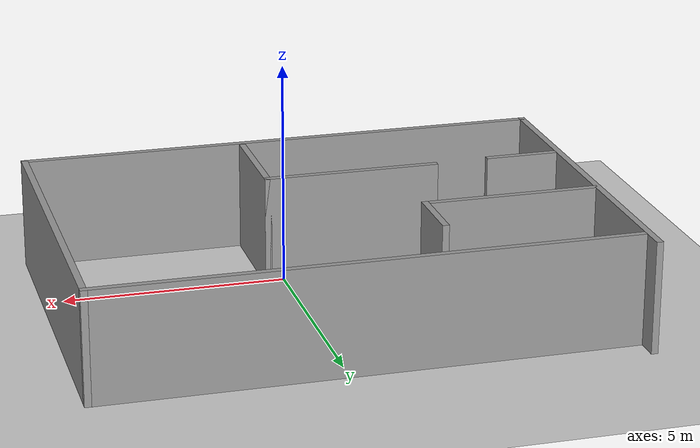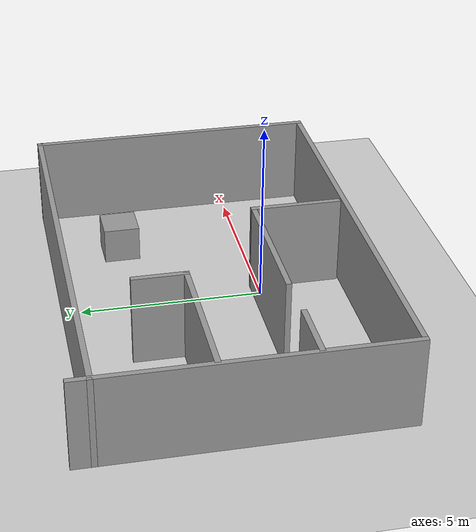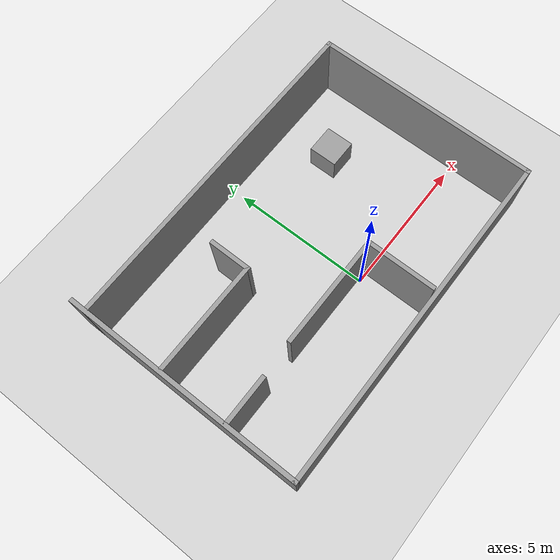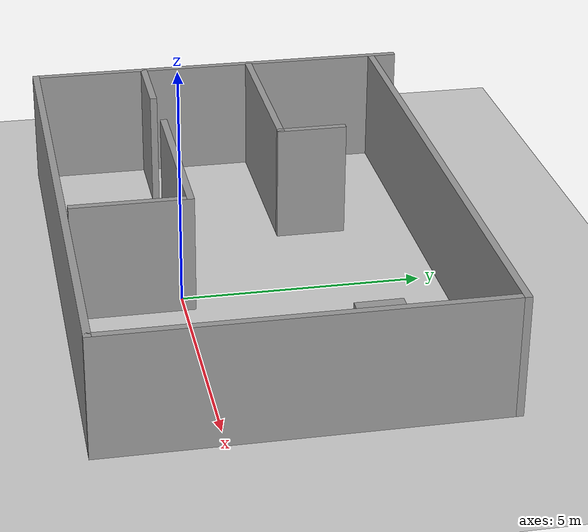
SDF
<sdf version="1.7">
 <world name="default">
  <light name="sun" type="directional">
   <pose>0 0 10 0 -0 0</pose>
   <diffuse>0.8 0.8 0.8 1</diffuse>
   <specular>0.2 0.2 0.2 1</specular>
   <attenuation>
    <range>1000</range>
    <constant>0.9</constant>
    <linear>0.01</linear>
    <quadratic>0.001</quadratic>
   </attenuation>
   <direction>-0.5 0.1 -0.9</direction>
   <spot><inner_angle>0</inner_angle><outer_angle>0</outer_angle><falloff>0</falloff></spot>
  </light>
  <model name="ground_plane">
   <static>1</static>
   <link name="link">
    <collision name="collision">
     <geometry><plane><normal>0 0 1</normal><size>100 100</size></plane></geometry>
     <surface>
      <contact><collide_bitmask>65535</collide_bitmask></contact>
      <friction><ode><mu>100</mu><mu2>50</mu2></ode></friction>
     </surface>
    </collision>
    <visual name="visual">
     <cast_shadows>0</cast_shadows>
     <geometry><plane><normal>0 0 1</normal><size>100 100</size></plane></geometry>
     <material>
      <script><uri>file://media/materials/scripts/gazebo.material</uri><name>Gazebo/Grey</name></script>
     </material>
    </visual>
   </link>
  </model>
  <gravity>0 0 -9.8</gravity>
  <magnetic_field>6e-06 2.3e-05 -4.2e-05</magnetic_field>
  <atmosphere type="adiabatic"/>
  <physics type="ode">
   <max_step_size>0.001</max_step_size>
   <real_time_factor>1</real_time_factor>
   <real_time_update_rate>1000</real_time_update_rate>
  </physics>
  <scene><ambient>0.4 0.4 0.4 1</ambient><background>0.7 0.7 0.7 1</background><shadows>1</shadows></scene>
  <spherical_coordinates>
   <surface_model>EARTH_WGS84</surface_model>
   <latitude_deg>0</latitude_deg>
   <longitude_deg>0</longitude_deg>
   <elevation>0</elevation>
   <heading_deg>0</heading_deg>
  </spherical_coordinates>
  <model name="apartment">
   <pose>-0.523043 1.7879 0 0 -0 0</pose>
   <link name="Wall_10">
    <collision name="Wall_10_Collision">
     <geometry><box><size>1.5 0.15 2.5</size></box></geometry>
     <pose>0 0 1.25 0 -0 0</pose>
    </collision>
    <visual name="Wall_10_Visual">
     <pose>0 0 1.25 0 -0 0</pose>
     <geometry><box><size>1.5 0.15 2.5</size></box></geometry>
     <material>
      <script><uri>file://media/materials/scripts/gazebo.material</uri><name>Gazebo/Grey</name></script>
      <ambient>1 1 1 1</ambient>
     </material>
     <meta><layer>0</layer></meta>
    </visual>
    <pose>-1.98323 1.42389 0 0 -0 1.5708</pose>
   </link>
   <link name="Wall_12">
    <collision name="Wall_12_Collision">
     <geometry><box><size>1.75 0.15 2.5</size></box></geometry>
     <pose>0 0 1.25 0 -0 0</pose>
    </collision>
    <visual name="Wall_12_Visual">
     <pose>0 0 1.25 0 -0 0</pose>
     <geometry><box><size>1.75 0.15 2.5</size></box></geometry>
     <material>
      <script><uri>file://media/materials/scripts/gazebo.material</uri><name>Gazebo/Grey</name></script>
      <ambient>1 1 1 1</ambient>
     </material>
     <meta><layer>0</layer></meta>
    </visual>
    <pose>-5.06382 -1.69832 0 0 -0 0</pose>
   </link>
   <link name="Wall_14">
    <collision name="Wall_14_Collision">
     <geometry><box><size>4 0.15 2.5</size></box></geometry>
     <pose>0 0 1.25 0 -0 0</pose>
    </collision>
    <visual name="Wall_14_Visual">
     <pose>0 0 1.25 0 -0 0</pose>
     <geometry><box><size>4 0.15 2.5</size></box></geometry>
     <material>
      <script><uri>file://media/materials/scripts/gazebo.material</uri><name>Gazebo/Grey</name></script>
      <ambient>1 1 1 1</ambient>
     </material>
     <meta><layer>0</layer></meta>
    </visual>
    <pose>-1.00216 -1.63714 0 0 -0 0</pose>
   </link>
   <link name="Wall_17">
    <collision name="Wall_17_Collision">
     <geometry><box><size>2.5 0.15 2.5</size></box></geometry>
     <pose>0 0 1.25 0 -0 0</pose>
    </collision>
    <visual name="Wall_17_Visual">
     <pose>0 0 1.25 0 -0 0</pose>
     <geometry><box><size>2.5 0.15 2.5</size></box></geometry>
     <material>
      <script><uri>file://media/materials/scripts/gazebo.material</uri><name>Gazebo/Grey</name></script>
      <ambient>1 1 1 1</ambient>
     </material>
     <meta><layer>0</layer></meta>
    </visual>
    <pose>0.922843 -2.81214 0 0 -0 -1.5708</pose>
   </link>
   <link name="Wall_4">
    <collision name="Wall_4_Collision">
     <geometry><box><size>8.5 0.15 2.5</size></box></geometry>
     <pose>0 0 1.25 0 -0 0</pose>
    </collision>
    <visual name="Wall_4_Visual">
     <pose>0 0 1.25 0 -0 0</pose>
     <geometry><box><size>8.5 0.15 2.5</size></box></geometry>
     <material>
      <script><uri>file://media/materials/scripts/gazebo.material</uri><name>Gazebo/Grey</name></script>
      <ambient>1 1 1 1</ambient>
     </material>
     <meta><layer>0</layer></meta>
    </visual>
    <pose>-5.925 0 0 0 -0 -1.5708</pose>
   </link>
   <link name="Wall_5">
    <collision name="Wall_5_Collision">
     <geometry><box><size>12 0.15 2.5</size></box></geometry>
     <pose>0 0 1.25 0 -0 0</pose>
    </collision>
    <visual name="Wall_5_Visual">
     <pose>0 0 1.25 0 -0 0</pose>
     <geometry><box><size>12 0.15 2.5</size></box></geometry>
     <material>
      <script><uri>file://media/materials/scripts/gazebo.material</uri><name>Gazebo/Grey</name></script>
      <ambient>1 1 1 1</ambient>
     </material>
     <meta><layer>0</layer></meta>
    </visual>
    <pose>0 -4.175 0 0 -0 0</pose>
   </link>
   <link name="Wall_6">
    <collision name="Wall_6_Collision">
     <geometry><box><size>8 0.15 2.5</size></box></geometry>
     <pose>0 0 1.25 0 -0 0</pose>
    </collision>
    <visual name="Wall_6_Visual">
     <pose>0 0 1.25 0 -0 0</pose>
     <geometry><box><size>8 0.15 2.5</size></box></geometry>
     <material>
      <script><uri>file://media/materials/scripts/gazebo.material</uri><name>Gazebo/Grey</name></script>
      <ambient>1 1 1 1</ambient>
     </material>
     <meta><layer>0</layer></meta>
    </visual>
    <pose>5.925 -0.25 0 0 -0 1.5708</pose>
   </link>
   <link name="Wall_7">
    <collision name="Wall_7_Collision">
     <geometry><box><size>12 0.15 2.5</size></box></geometry>
     <pose>0 0 1.25 0 -0 0</pose>
    </collision>
    <visual name="Wall_7_Visual">
     <pose>0 0 1.25 0 -0 0</pose>
     <geometry><box><size>12 0.15 2.5</size></box></geometry>
     <material>
      <script><uri>file://media/materials/scripts/gazebo.material</uri><name>Gazebo/Grey</name></script>
      <ambient>1 1 1 1</ambient>
     </material>
     <meta><layer>0</layer></meta>
    </visual>
    <pose>0 3.675 0 0 -0 3.14159</pose>
   </link>
   <link name="Wall_9">
    <collision name="Wall_9_Collision">
     <geometry><box><size>4 0.15 2.5</size></box></geometry>
     <pose>0 0 1.25 0 -0 0</pose>
    </collision>
    <visual name="Wall_9_Visual">
     <pose>0 0 1.25 0 -0 0</pose>
     <geometry><box><size>4 0.15 2.5</size></box></geometry>
     <material>
      <script><uri>file://media/materials/scripts/gazebo.material</uri><name>Gazebo/Grey</name></script>
      <ambient>1 1 1 1</ambient>
     </material>
     <meta><layer>0</layer></meta>
    </visual>
    <pose>-3.90823 0.748895 0 0 -0 0</pose>
   </link>
   <static>1</static>
  </model>
  <model name="unit_box">
   <pose>3.00953 3.50462 0.5 0.237137 1.57079 0.243576</pose>
   <link name="link">
    <inertial>
     <mass>1</mass>
     <inertia>
      <ixx>0.166667</ixx>
      <ixy>0</ixy>
      <ixz>0</ixz>
      <iyy>0.166667</iyy>
      <iyz>0</iyz>
      <izz>0.166667</izz>
     </inertia>
    </inertial>
    <collision name="collision"><geometry><box><size>1 0.999999 1</size></box></geometry></collision>
    <visual name="visual">
     <geometry><box><size>1 0.999999 1</size></box></geometry>
     <material>
      <script><name>Gazebo/Grey</name><uri>file://media/materials/scripts/gazebo.material</uri></script>
     </material>
    </visual>
   </link>
  </model>
 </world>
</sdf>
